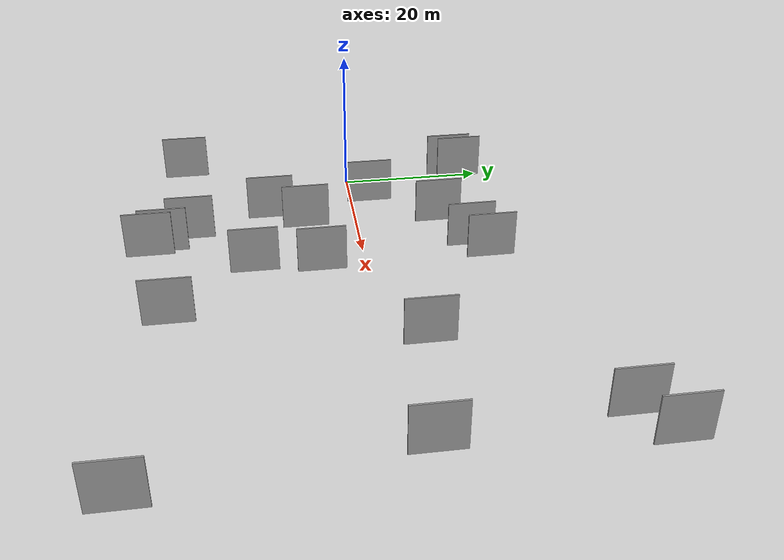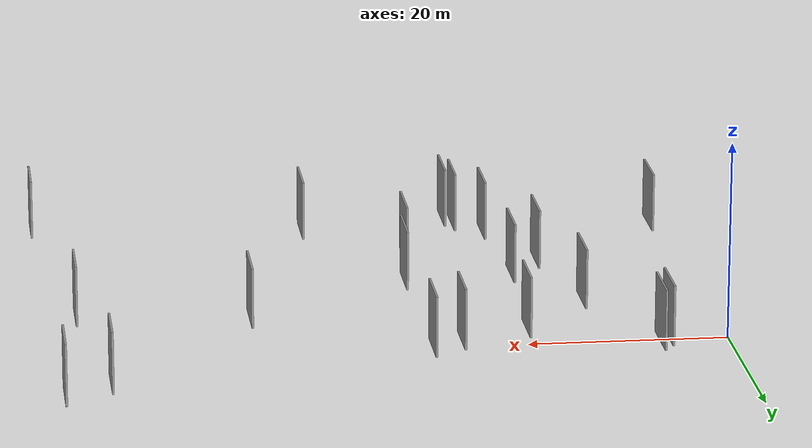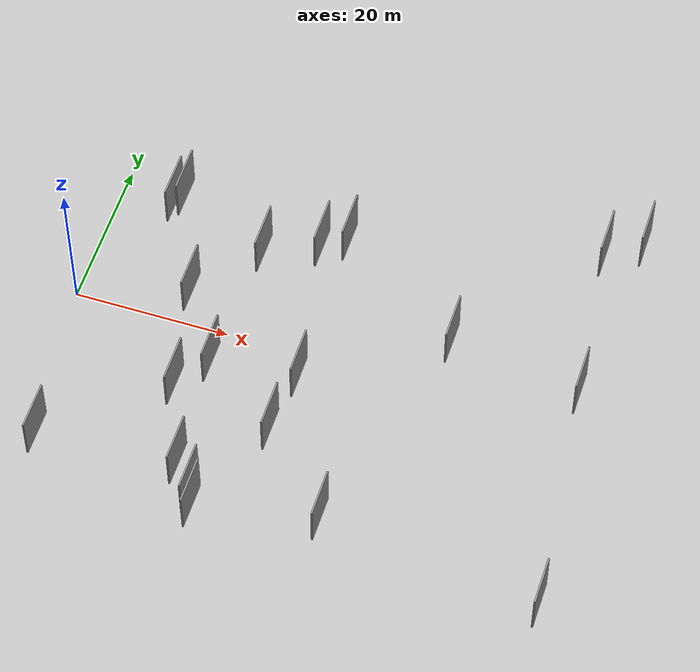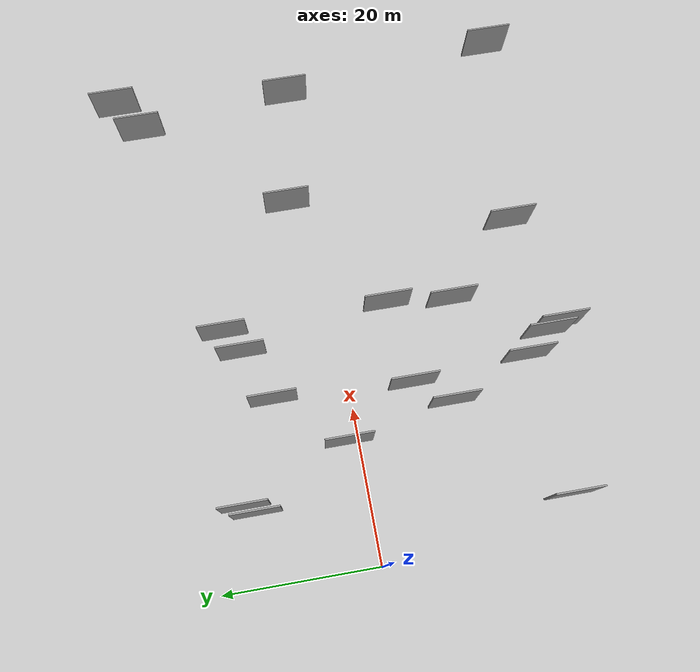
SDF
<sdf version="1.6">
 <world name="default">
  <scene>
   <sky><clouds><speed>12</speed></clouds></sky>
   <ambient>0.4 0.4 0.4 1</ambient>
   <background>0.7 0.7 0.7 1</background>
   <shadows>1</shadows>
  </scene>
  <gravity>0 0 -9.8066</gravity>
  <magnetic_field>6e-06 2.3e-05 -4.2e-05</magnetic_field>
  <physics default="0" name="default_physics" type="ode">
   <ode>
    <solver>
     <type>quick</type>
     <iters>10</iters>
     <sor>1.0</sor>
     <use_dynamic_moi_rescaling>0</use_dynamic_moi_rescaling>
    </solver>
    <constraints>
     <cfm>0</cfm>
     <erp>0.2</erp>
     <contact_max_correcting_vel>100</contact_max_correcting_vel>
     <contact_surface_layer>0.001</contact_surface_layer>
    </constraints>
   </ode>
   <max_step_size>0.004</max_step_size>
   <real_time_factor>1</real_time_factor>
   <real_time_update_rate>250</real_time_update_rate>
  </physics>
  <light name="sun" type="directional">
   <pose>0 0 10 0 0 0</pose>
   <diffuse>0.8 0.8 0.8 1</diffuse>
   <specular>0.2 0.2 0.2 1</specular>
   <attenuation>
    <range>1000</range>
    <constant>0.9</constant>
    <linear>0.01</linear>
    <quadratic>0.001</quadratic>
   </attenuation>
   <direction>-0.5 0.1 -0.9</direction>
  </light>
  <model name="grey_wall_1">
   <static>1</static>
   <pose>20.7412 -7.5342 5.0 0.000000 0.000000 1.570796</pose>
   <link name="link">
    <pose>0 0 3.00 0 0 0</pose>
    <collision name="collision"><geometry><box><size>6.00 0.2 6.00</size></box></geometry></collision>
    <visual name="visual">
     <cast_shadows>0</cast_shadows>
     <geometry><box><size>6.00 0.2 6.00</size></box></geometry>
     <material>
      <script>
       <uri>model://grey_wall/materials/scripts</uri>
       <uri>model://grey_wall/materials/textures</uri>
       <name>vrc/grey_wall</name>
      </script>
     </material>
    </visual>
   </link>
  </model>
  <model name="grey_wall_2">
   <static>1</static>
   <pose>67.8018 -27.8107 5.0 0.000000 0.000000 1.570796</pose>
   <link name="link">
    <pose>0 0 3.00 0 0 0</pose>
    <collision name="collision"><geometry><box><size>6.00 0.2 6.00</size></box></geometry></collision>
    <visual name="visual">
     <cast_shadows>0</cast_shadows>
     <geometry><box><size>6.00 0.2 6.00</size></box></geometry>
     <material>
      <script>
       <uri>model://grey_wall/materials/scripts</uri>
       <uri>model://grey_wall/materials/textures</uri>
       <name>vrc/grey_wall</name>
      </script>
     </material>
    </visual>
   </link>
  </model>
  <model name="grey_wall_3">
   <static>1</static>
   <pose>31.2338 14.8441 5.0 0.000000 0.000000 1.570796</pose>
   <link name="link">
    <pose>0 0 3.00 0 0 0</pose>
    <collision name="collision"><geometry><box><size>6.00 0.2 6.00</size></box></geometry></collision>
    <visual name="visual">
     <cast_shadows>0</cast_shadows>
     <geometry><box><size>6.00 0.2 6.00</size></box></geometry>
     <material>
      <script>
       <uri>model://grey_wall/materials/scripts</uri>
       <uri>model://grey_wall/materials/textures</uri>
       <name>vrc/grey_wall</name>
      </script>
     </material>
    </visual>
   </link>
  </model>
  <model name="grey_wall_4">
   <static>1</static>
   <pose>25.2690 -27.4634 5.0 0.000000 0.000000 1.570796</pose>
   <link name="link">
    <pose>0 0 3.00 0 0 0</pose>
    <collision name="collision"><geometry><box><size>6.00 0.2 6.00</size></box></geometry></collision>
    <visual name="visual">
     <cast_shadows>0</cast_shadows>
     <geometry><box><size>6.00 0.2 6.00</size></box></geometry>
     <material>
      <script>
       <uri>model://grey_wall/materials/scripts</uri>
       <uri>model://grey_wall/materials/textures</uri>
       <name>vrc/grey_wall</name>
      </script>
     </material>
    </visual>
   </link>
  </model>
  <model name="grey_wall_5">
   <static>1</static>
   <pose>62.1963 22.2573 5.0 0.000000 0.000000 1.570796</pose>
   <link name="link">
    <pose>0 0 3.00 0 0 0</pose>
    <collision name="collision"><geometry><box><size>6.00 0.2 6.00</size></box></geometry></collision>
    <visual name="visual">
     <cast_shadows>0</cast_shadows>
     <geometry><box><size>6.00 0.2 6.00</size></box></geometry>
     <material>
      <script>
       <uri>model://grey_wall/materials/scripts</uri>
       <uri>model://grey_wall/materials/textures</uri>
       <name>vrc/grey_wall</name>
      </script>
     </material>
    </visual>
   </link>
  </model>
  <model name="grey_wall_6">
   <static>1</static>
   <pose>8.4049 13.8768 5.0 0.000000 0.000000 1.570796</pose>
   <link name="link">
    <pose>0 0 3.00 0 0 0</pose>
    <collision name="collision"><geometry><box><size>6.00 0.2 6.00</size></box></geometry></collision>
    <visual name="visual">
     <cast_shadows>0</cast_shadows>
     <geometry><box><size>6.00 0.2 6.00</size></box></geometry>
     <material>
      <script>
       <uri>model://grey_wall/materials/scripts</uri>
       <uri>model://grey_wall/materials/textures</uri>
       <name>vrc/grey_wall</name>
      </script>
     </material>
    </visual>
   </link>
  </model>
  <model name="grey_wall_7">
   <static>1</static>
   <pose>4.2225 -23.4742 5.0 0.000000 0.000000 1.570796</pose>
   <link name="link">
    <pose>0 0 3.00 0 0 0</pose>
    <collision name="collision"><geometry><box><size>6.00 0.2 6.00</size></box></geometry></collision>
    <visual name="visual">
     <cast_shadows>0</cast_shadows>
     <geometry><box><size>6.00 0.2 6.00</size></box></geometry>
     <material>
      <script>
       <uri>model://grey_wall/materials/scripts</uri>
       <uri>model://grey_wall/materials/textures</uri>
       <name>vrc/grey_wall</name>
      </script>
     </material>
    </visual>
   </link>
  </model>
  <model name="grey_wall_8">
   <static>1</static>
   <pose>21.5722 9.9279 5.0 0.000000 0.000000 1.570796</pose>
   <link name="link">
    <pose>0 0 3.00 0 0 0</pose>
    <collision name="collision"><geometry><box><size>6.00 0.2 6.00</size></box></geometry></collision>
    <visual name="visual">
     <cast_shadows>0</cast_shadows>
     <geometry><box><size>6.00 0.2 6.00</size></box></geometry>
     <material>
      <script>
       <uri>model://grey_wall/materials/scripts</uri>
       <uri>model://grey_wall/materials/textures</uri>
       <name>vrc/grey_wall</name>
      </script>
     </material>
    </visual>
   </link>
  </model>
  <model name="grey_wall_9">
   <static>1</static>
   <pose>24.4387 -25.6779 5.0 0.000000 0.000000 1.570796</pose>
   <link name="link">
    <pose>0 0 3.00 0 0 0</pose>
    <collision name="collision"><geometry><box><size>6.00 0.2 6.00</size></box></geometry></collision>
    <visual name="visual">
     <cast_shadows>0</cast_shadows>
     <geometry><box><size>6.00 0.2 6.00</size></box></geometry>
     <material>
      <script>
       <uri>model://grey_wall/materials/scripts</uri>
       <uri>model://grey_wall/materials/textures</uri>
       <name>vrc/grey_wall</name>
      </script>
     </material>
    </visual>
   </link>
  </model>
  <model name="grey_wall_10">
   <static>1</static>
   <pose>47.7856 4.0914 5.0 0.000000 0.000000 1.570796</pose>
   <link name="link">
    <pose>0 0 3.00 0 0 0</pose>
    <collision name="collision"><geometry><box><size>6.00 0.2 6.00</size></box></geometry></collision>
    <visual name="visual">
     <cast_shadows>0</cast_shadows>
     <geometry><box><size>6.00 0.2 6.00</size></box></geometry>
     <material>
      <script>
       <uri>model://grey_wall/materials/scripts</uri>
       <uri>model://grey_wall/materials/textures</uri>
       <name>vrc/grey_wall</name>
      </script>
     </material>
    </visual>
   </link>
  </model>
  <model name="grey_wall_11">
   <static>1</static>
   <pose>14.9479 1.5950 5.0 0.000000 0.000000 1.570796</pose>
   <link name="link">
    <pose>0 0 3.00 0 0 0</pose>
    <collision name="collision"><geometry><box><size>6.00 0.2 6.00</size></box></geometry></collision>
    <visual name="visual">
     <cast_shadows>0</cast_shadows>
     <geometry><box><size>6.00 0.2 6.00</size></box></geometry>
     <material>
      <script>
       <uri>model://grey_wall/materials/scripts</uri>
       <uri>model://grey_wall/materials/textures</uri>
       <name>vrc/grey_wall</name>
      </script>
     </material>
    </visual>
   </link>
  </model>
  <model name="grey_wall_12">
   <static>1</static>
   <pose>66.6209 25.2771 5.0 0.000000 0.000000 1.570796</pose>
   <link name="link">
    <pose>0 0 3.00 0 0 0</pose>
    <collision name="collision"><geometry><box><size>6.00 0.2 6.00</size></box></geometry></collision>
    <visual name="visual">
     <cast_shadows>0</cast_shadows>
     <geometry><box><size>6.00 0.2 6.00</size></box></geometry>
     <material>
      <script>
       <uri>model://grey_wall/materials/scripts</uri>
       <uri>model://grey_wall/materials/textures</uri>
       <name>vrc/grey_wall</name>
      </script>
     </material>
    </visual>
   </link>
  </model>
  <model name="grey_wall_13">
   <static>1</static>
   <pose>9.3715 15.1877 5.0 0.000000 0.000000 1.570796</pose>
   <link name="link">
    <pose>0 0 3.00 0 0 0</pose>
    <collision name="collision"><geometry><box><size>6.00 0.2 6.00</size></box></geometry></collision>
    <visual name="visual">
     <cast_shadows>0</cast_shadows>
     <geometry><box><size>6.00 0.2 6.00</size></box></geometry>
     <material>
      <script>
       <uri>model://grey_wall/materials/scripts</uri>
       <uri>model://grey_wall/materials/textures</uri>
       <name>vrc/grey_wall</name>
      </script>
     </material>
    </visual>
   </link>
  </model>
  <model name="grey_wall_14">
   <static>1</static>
   <pose>31.5841 -6.3510 5.0 0.000000 0.000000 1.570796</pose>
   <link name="link">
    <pose>0 0 3.00 0 0 0</pose>
    <collision name="collision"><geometry><box><size>6.00 0.2 6.00</size></box></geometry></collision>
    <visual name="visual">
     <cast_shadows>0</cast_shadows>
     <geometry><box><size>6.00 0.2 6.00</size></box></geometry>
     <material>
      <script>
       <uri>model://grey_wall/materials/scripts</uri>
       <uri>model://grey_wall/materials/textures</uri>
       <name>vrc/grey_wall</name>
      </script>
     </material>
    </visual>
   </link>
  </model>
  <model name="grey_wall_15">
   <static>1</static>
   <pose>64.5858 1.7170 5.0 0.000000 0.000000 1.570796</pose>
   <link name="link">
    <pose>0 0 3.00 0 0 0</pose>
    <collision name="collision"><geometry><box><size>6.00 0.2 6.00</size></box></geometry></collision>
    <visual name="visual">
     <cast_shadows>0</cast_shadows>
     <geometry><box><size>6.00 0.2 6.00</size></box></geometry>
     <material>
      <script>
       <uri>model://grey_wall/materials/scripts</uri>
       <uri>model://grey_wall/materials/textures</uri>
       <name>vrc/grey_wall</name>
      </script>
     </material>
    </visual>
   </link>
  </model>
  <model name="grey_wall_16">
   <static>1</static>
   <pose>17.6434 -11.9998 5.0 0.000000 0.000000 1.570796</pose>
   <link name="link">
    <pose>0 0 3.00 0 0 0</pose>
    <collision name="collision"><geometry><box><size>6.00 0.2 6.00</size></box></geometry></collision>
    <visual name="visual">
     <cast_shadows>0</cast_shadows>
     <geometry><box><size>6.00 0.2 6.00</size></box></geometry>
     <material>
      <script>
       <uri>model://grey_wall/materials/scripts</uri>
       <uri>model://grey_wall/materials/textures</uri>
       <name>vrc/grey_wall</name>
      </script>
     </material>
    </visual>
   </link>
  </model>
  <model name="grey_wall_17">
   <static>1</static>
   <pose>21.7549 -22.4169 5.0 0.000000 0.000000 1.570796</pose>
   <link name="link">
    <pose>0 0 3.00 0 0 0</pose>
    <collision name="collision"><geometry><box><size>6.00 0.2 6.00</size></box></geometry></collision>
    <visual name="visual">
     <cast_shadows>0</cast_shadows>
     <geometry><box><size>6.00 0.2 6.00</size></box></geometry>
     <material>
      <script>
       <uri>model://grey_wall/materials/scripts</uri>
       <uri>model://grey_wall/materials/textures</uri>
       <name>vrc/grey_wall</name>
      </script>
     </material>
    </visual>
   </link>
  </model>
  <model name="grey_wall_18">
   <static>1</static>
   <pose>28.2347 12.9131 5.0 0.000000 0.000000 1.570796</pose>
   <link name="link">
    <pose>0 0 3.00 0 0 0</pose>
    <collision name="collision"><geometry><box><size>6.00 0.2 6.00</size></box></geometry></collision>
    <visual name="visual">
     <cast_shadows>0</cast_shadows>
     <geometry><box><size>6.00 0.2 6.00</size></box></geometry>
     <material>
      <script>
       <uri>model://grey_wall/materials/scripts</uri>
       <uri>model://grey_wall/materials/textures</uri>
       <name>vrc/grey_wall</name>
      </script>
     </material>
    </visual>
   </link>
  </model>
  <model name="grey_wall_19">
   <static>1</static>
   <pose>30.6875 -14.5331 5.0 0.000000 0.000000 1.570796</pose>
   <link name="link">
    <pose>0 0 3.00 0 0 0</pose>
    <collision name="collision"><geometry><box><size>6.00 0.2 6.00</size></box></geometry></collision>
    <visual name="visual">
     <cast_shadows>0</cast_shadows>
     <geometry><box><size>6.00 0.2 6.00</size></box></geometry>
     <material>
      <script>
       <uri>model://grey_wall/materials/scripts</uri>
       <uri>model://grey_wall/materials/textures</uri>
       <name>vrc/grey_wall</name>
      </script>
     </material>
    </visual>
   </link>
  </model>
  <model name="grey_wall_20">
   <static>1</static>
   <pose>40.2162 -24.5225 5.0 0.000000 0.000000 1.570796</pose>
   <link name="link">
    <pose>0 0 3.00 0 0 0</pose>
    <collision name="collision"><geometry><box><size>6.00 0.2 6.00</size></box></geometry></collision>
    <visual name="visual">
     <cast_shadows>0</cast_shadows>
     <geometry><box><size>6.00 0.2 6.00</size></box></geometry>
     <material>
      <script>
       <uri>model://grey_wall/materials/scripts</uri>
       <uri>model://grey_wall/materials/textures</uri>
       <name>vrc/grey_wall</name>
      </script>
     </material>
    </visual>
   </link>
  </model>
 </world>
</sdf>
